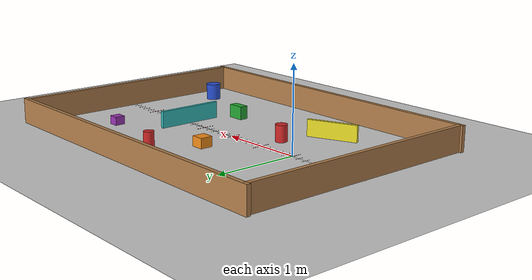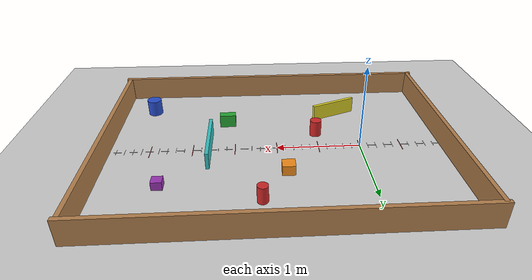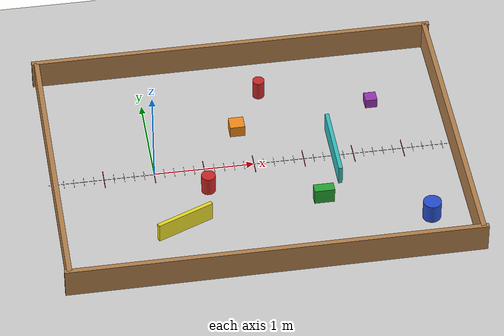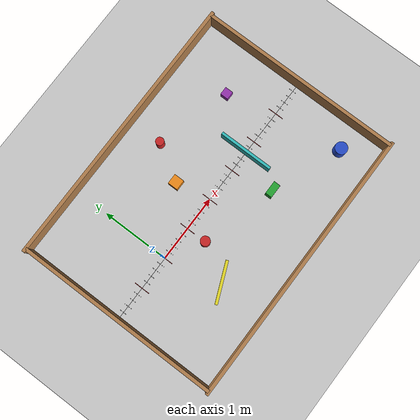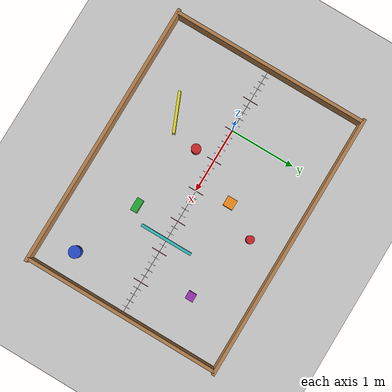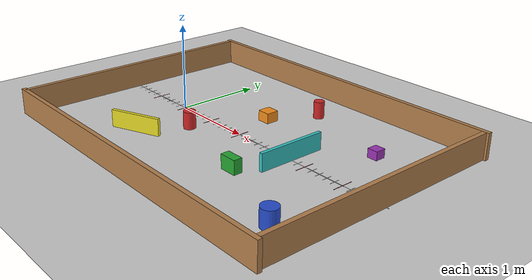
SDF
<?xml version="1.0"?>
<sdf version="1.6">
  <world name="recon_world">

    <!-- The robot is ~12 cm wide, so use a small, accurate time step. -->
    <physics type="ode">
      <max_step_size>0.001</max_step_size>
      <real_time_factor>1.0</real_time_factor>
      <real_time_update_rate>1000</real_time_update_rate>
      <ode>
        <solver>
          <type>quick</type>
          <iters>150</iters>
          <sor>1.3</sor>
        </solver>
        <constraints>
          <cfm>0.0</cfm>
          <erp>0.2</erp>
          <contact_max_correcting_vel>0.1</contact_max_correcting_vel>
          <contact_surface_layer>0.0005</contact_surface_layer>
        </constraints>
      </ode>
    </physics>

    <gravity>0 0 -9.81</gravity>

    <include><uri>model://sun</uri></include>

    <!-- flat ground with a grid so the robot's motion is easy to see -->
    <model name="ground">
      <static>true</static>
      <link name="link">
        <collision name="collision">
          <geometry><plane><normal>0 0 1</normal><size>40 40</size></plane></geometry>
          <surface>
            <friction><ode><mu>1.0</mu><mu2>1.0</mu2></ode></friction>
          </surface>
        </collision>
        <visual name="visual">
          <cast_shadows>false</cast_shadows>
          <geometry><plane><normal>0 0 1</normal><size>40 40</size></plane></geometry>
          <material><script>
            <uri>file://media/materials/scripts/gazebo.material</uri>
            <name>Gazebo/Grey</name>
          </script></material>
        </visual>
      </link>
    </model>

    <!-- 10 cm tape ruler along +x (red every 50 cm) so the walking distance is easy to see -->
    <model name="ruler">
      <static>true</static>
      <link name="link">
        <visual name="tick_-10"><pose>-1.00 0 0.0006 0 0 0</pose><geometry><box><size>0.006 0.24 0.001</size></box></geometry><material><script><uri>file://media/materials/scripts/gazebo.material</uri><name>Gazebo/Red</name></script></material></visual>
        <visual name="tick_-9"><pose>-0.90 0 0.0006 0 0 0</pose><geometry><box><size>0.003 0.12 0.001</size></box></geometry><material><script><uri>file://media/materials/scripts/gazebo.material</uri><name>Gazebo/White</name></script></material></visual>
        <visual name="tick_-8"><pose>-0.80 0 0.0006 0 0 0</pose><geometry><box><size>0.003 0.12 0.001</size></box></geometry><material><script><uri>file://media/materials/scripts/gazebo.material</uri><name>Gazebo/White</name></script></material></visual>
        <visual name="tick_-7"><pose>-0.70 0 0.0006 0 0 0</pose><geometry><box><size>0.003 0.12 0.001</size></box></geometry><material><script><uri>file://media/materials/scripts/gazebo.material</uri><name>Gazebo/White</name></script></material></visual>
        <visual name="tick_-6"><pose>-0.60 0 0.0006 0 0 0</pose><geometry><box><size>0.003 0.12 0.001</size></box></geometry><material><script><uri>file://media/materials/scripts/gazebo.material</uri><name>Gazebo/White</name></script></material></visual>
        <visual name="tick_-5"><pose>-0.50 0 0.0006 0 0 0</pose><geometry><box><size>0.006 0.24 0.001</size></box></geometry><material><script><uri>file://media/materials/scripts/gazebo.material</uri><name>Gazebo/Red</name></script></material></visual>
        <visual name="tick_-4"><pose>-0.40 0 0.0006 0 0 0</pose><geometry><box><size>0.003 0.12 0.001</size></box></geometry><material><script><uri>file://media/materials/scripts/gazebo.material</uri><name>Gazebo/White</name></script></material></visual>
        <visual name="tick_-3"><pose>-0.30 0 0.0006 0 0 0</pose><geometry><box><size>0.003 0.12 0.001</size></box></geometry><material><script><uri>file://media/materials/scripts/gazebo.material</uri><name>Gazebo/White</name></script></material></visual>
        <visual name="tick_-2"><pose>-0.20 0 0.0006 0 0 0</pose><geometry><box><size>0.003 0.12 0.001</size></box></geometry><material><script><uri>file://media/materials/scripts/gazebo.material</uri><name>Gazebo/White</name></script></material></visual>
        <visual name="tick_-1"><pose>-0.10 0 0.0006 0 0 0</pose><geometry><box><size>0.003 0.12 0.001</size></box></geometry><material><script><uri>file://media/materials/scripts/gazebo.material</uri><name>Gazebo/White</name></script></material></visual>
        <visual name="tick_0"><pose>0.00 0 0.0006 0 0 0</pose><geometry><box><size>0.006 0.24 0.001</size></box></geometry><material><script><uri>file://media/materials/scripts/gazebo.material</uri><name>Gazebo/Red</name></script></material></visual>
        <visual name="tick_1"><pose>0.10 0 0.0006 0 0 0</pose><geometry><box><size>0.003 0.12 0.001</size></box></geometry><material><script><uri>file://media/materials/scripts/gazebo.material</uri><name>Gazebo/White</name></script></material></visual>
        <visual name="tick_2"><pose>0.20 0 0.0006 0 0 0</pose><geometry><box><size>0.003 0.12 0.001</size></box></geometry><material><script><uri>file://media/materials/scripts/gazebo.material</uri><name>Gazebo/White</name></script></material></visual>
        <visual name="tick_3"><pose>0.30 0 0.0006 0 0 0</pose><geometry><box><size>0.003 0.12 0.001</size></box></geometry><material><script><uri>file://media/materials/scripts/gazebo.material</uri><name>Gazebo/White</name></script></material></visual>
        <visual name="tick_4"><pose>0.40 0 0.0006 0 0 0</pose><geometry><box><size>0.003 0.12 0.001</size></box></geometry><material><script><uri>file://media/materials/scripts/gazebo.material</uri><name>Gazebo/White</name></script></material></visual>
        <visual name="tick_5"><pose>0.50 0 0.0006 0 0 0</pose><geometry><box><size>0.006 0.24 0.001</size></box></geometry><material><script><uri>file://media/materials/scripts/gazebo.material</uri><name>Gazebo/Red</name></script></material></visual>
        <visual name="tick_6"><pose>0.60 0 0.0006 0 0 0</pose><geometry><box><size>0.003 0.12 0.001</size></box></geometry><material><script><uri>file://media/materials/scripts/gazebo.material</uri><name>Gazebo/White</name></script></material></visual>
        <visual name="tick_7"><pose>0.70 0 0.0006 0 0 0</pose><geometry><box><size>0.003 0.12 0.001</size></box></geometry><material><script><uri>file://media/materials/scripts/gazebo.material</uri><name>Gazebo/White</name></script></material></visual>
        <visual name="tick_8"><pose>0.80 0 0.0006 0 0 0</pose><geometry><box><size>0.003 0.12 0.001</size></box></geometry><material><script><uri>file://media/materials/scripts/gazebo.material</uri><name>Gazebo/White</name></script></material></visual>
        <visual name="tick_9"><pose>0.90 0 0.0006 0 0 0</pose><geometry><box><size>0.003 0.12 0.001</size></box></geometry><material><script><uri>file://media/materials/scripts/gazebo.material</uri><name>Gazebo/White</name></script></material></visual>
        <visual name="tick_10"><pose>1.00 0 0.0006 0 0 0</pose><geometry><box><size>0.006 0.24 0.001</size></box></geometry><material><script><uri>file://media/materials/scripts/gazebo.material</uri><name>Gazebo/Red</name></script></material></visual>
        <visual name="tick_11"><pose>1.10 0 0.0006 0 0 0</pose><geometry><box><size>0.003 0.12 0.001</size></box></geometry><material><script><uri>file://media/materials/scripts/gazebo.material</uri><name>Gazebo/White</name></script></material></visual>
        <visual name="tick_12"><pose>1.20 0 0.0006 0 0 0</pose><geometry><box><size>0.003 0.12 0.001</size></box></geometry><material><script><uri>file://media/materials/scripts/gazebo.material</uri><name>Gazebo/White</name></script></material></visual>
        <visual name="tick_13"><pose>1.30 0 0.0006 0 0 0</pose><geometry><box><size>0.003 0.12 0.001</size></box></geometry><material><script><uri>file://media/materials/scripts/gazebo.material</uri><name>Gazebo/White</name></script></material></visual>
        <visual name="tick_14"><pose>1.40 0 0.0006 0 0 0</pose><geometry><box><size>0.003 0.12 0.001</size></box></geometry><material><script><uri>file://media/materials/scripts/gazebo.material</uri><name>Gazebo/White</name></script></material></visual>
        <visual name="tick_15"><pose>1.50 0 0.0006 0 0 0</pose><geometry><box><size>0.006 0.24 0.001</size></box></geometry><material><script><uri>file://media/materials/scripts/gazebo.material</uri><name>Gazebo/Red</name></script></material></visual>
        <visual name="tick_16"><pose>1.60 0 0.0006 0 0 0</pose><geometry><box><size>0.003 0.12 0.001</size></box></geometry><material><script><uri>file://media/materials/scripts/gazebo.material</uri><name>Gazebo/White</name></script></material></visual>
        <visual name="tick_17"><pose>1.70 0 0.0006 0 0 0</pose><geometry><box><size>0.003 0.12 0.001</size></box></geometry><material><script><uri>file://media/materials/scripts/gazebo.material</uri><name>Gazebo/White</name></script></material></visual>
        <visual name="tick_18"><pose>1.80 0 0.0006 0 0 0</pose><geometry><box><size>0.003 0.12 0.001</size></box></geometry><material><script><uri>file://media/materials/scripts/gazebo.material</uri><name>Gazebo/White</name></script></material></visual>
        <visual name="tick_19"><pose>1.90 0 0.0006 0 0 0</pose><geometry><box><size>0.003 0.12 0.001</size></box></geometry><material><script><uri>file://media/materials/scripts/gazebo.material</uri><name>Gazebo/White</name></script></material></visual>
        <visual name="tick_20"><pose>2.00 0 0.0006 0 0 0</pose><geometry><box><size>0.006 0.24 0.001</size></box></geometry><material><script><uri>file://media/materials/scripts/gazebo.material</uri><name>Gazebo/Red</name></script></material></visual>
        <visual name="tick_21"><pose>2.10 0 0.0006 0 0 0</pose><geometry><box><size>0.003 0.12 0.001</size></box></geometry><material><script><uri>file://media/materials/scripts/gazebo.material</uri><name>Gazebo/White</name></script></material></visual>
        <visual name="tick_22"><pose>2.20 0 0.0006 0 0 0</pose><geometry><box><size>0.003 0.12 0.001</size></box></geometry><material><script><uri>file://media/materials/scripts/gazebo.material</uri><name>Gazebo/White</name></script></material></visual>
        <visual name="tick_23"><pose>2.30 0 0.0006 0 0 0</pose><geometry><box><size>0.003 0.12 0.001</size></box></geometry><material><script><uri>file://media/materials/scripts/gazebo.material</uri><name>Gazebo/White</name></script></material></visual>
        <visual name="tick_24"><pose>2.40 0 0.0006 0 0 0</pose><geometry><box><size>0.003 0.12 0.001</size></box></geometry><material><script><uri>file://media/materials/scripts/gazebo.material</uri><name>Gazebo/White</name></script></material></visual>
        <visual name="tick_25"><pose>2.50 0 0.0006 0 0 0</pose><geometry><box><size>0.006 0.24 0.001</size></box></geometry><material><script><uri>file://media/materials/scripts/gazebo.material</uri><name>Gazebo/Red</name></script></material></visual>
        <visual name="tick_26"><pose>2.60 0 0.0006 0 0 0</pose><geometry><box><size>0.003 0.12 0.001</size></box></geometry><material><script><uri>file://media/materials/scripts/gazebo.material</uri><name>Gazebo/White</name></script></material></visual>
        <visual name="tick_27"><pose>2.70 0 0.0006 0 0 0</pose><geometry><box><size>0.003 0.12 0.001</size></box></geometry><material><script><uri>file://media/materials/scripts/gazebo.material</uri><name>Gazebo/White</name></script></material></visual>
        <visual name="tick_28"><pose>2.80 0 0.0006 0 0 0</pose><geometry><box><size>0.003 0.12 0.001</size></box></geometry><material><script><uri>file://media/materials/scripts/gazebo.material</uri><name>Gazebo/White</name></script></material></visual>
        <visual name="tick_29"><pose>2.90 0 0.0006 0 0 0</pose><geometry><box><size>0.003 0.12 0.001</size></box></geometry><material><script><uri>file://media/materials/scripts/gazebo.material</uri><name>Gazebo/White</name></script></material></visual>
        <visual name="tick_30"><pose>3.00 0 0.0006 0 0 0</pose><geometry><box><size>0.006 0.24 0.001</size></box></geometry><material><script><uri>file://media/materials/scripts/gazebo.material</uri><name>Gazebo/Red</name></script></material></visual>
        <visual name="axis"><pose>1.0 0 0.0005 0 0 0</pose><geometry><box><size>4.1 0.004 0.001</size></box></geometry><material><script><uri>file://media/materials/scripts/gazebo.material</uri><name>Gazebo/White</name></script></material></visual>
      </link>
    </model>

    <!-- publishes /gazebo/model_states so the robot pose can be plotted/echoed -->
    <plugin name="gazebo_ros_state" filename="libgazebo_ros_state.so">
      <ros><namespace>/gazebo</namespace></ros>
      <update_rate>20.0</update_rate>
    </plugin>

    <!-- ===== arena: 4 m x 3 m room with obstacles ===== -->
    <model name="wall_n"><static>true</static><pose>1.0 1.5 0.15 0 0 0</pose><link name="l">
      <collision name="c"><geometry><box><size>4.1 0.05 0.3</size></box></geometry></collision>
      <visual name="v"><geometry><box><size>4.1 0.05 0.3</size></box></geometry><material><script><uri>file://media/materials/scripts/gazebo.material</uri><name>Gazebo/Wood</name></script></material></visual></link></model>
    <model name="wall_s"><static>true</static><pose>1.0 -1.5 0.15 0 0 0</pose><link name="l">
      <collision name="c"><geometry><box><size>4.1 0.05 0.3</size></box></geometry></collision>
      <visual name="v"><geometry><box><size>4.1 0.05 0.3</size></box></geometry><material><script><uri>file://media/materials/scripts/gazebo.material</uri><name>Gazebo/Wood</name></script></material></visual></link></model>
    <model name="wall_e"><static>true</static><pose>3.0 0.0 0.15 0 0 0</pose><link name="l">
      <collision name="c"><geometry><box><size>0.05 3.0 0.3</size></box></geometry></collision>
      <visual name="v"><geometry><box><size>0.05 3.0 0.3</size></box></geometry><material><script><uri>file://media/materials/scripts/gazebo.material</uri><name>Gazebo/Wood</name></script></material></visual></link></model>
    <model name="wall_w"><static>true</static><pose>-1.0 0.0 0.15 0 0 0</pose><link name="l">
      <collision name="c"><geometry><box><size>0.05 3.0 0.3</size></box></geometry></collision>
      <visual name="v"><geometry><box><size>0.05 3.0 0.3</size></box></geometry><material><script><uri>file://media/materials/scripts/gazebo.material</uri><name>Gazebo/Wood</name></script></material></visual></link></model>
    <model name="block1"><static>true</static><pose>0.9 0.5 0.06 0 0 0</pose><link name="l">
      <collision name="c"><geometry><box><size>0.15 0.15 0.12</size></box></geometry></collision>
      <visual name="v"><geometry><box><size>0.15 0.15 0.12</size></box></geometry><material><script><uri>file://media/materials/scripts/gazebo.material</uri><name>Gazebo/Orange</name></script></material></visual></link></model>
    <model name="block2"><static>true</static><pose>1.6 -0.6 0.08 0 0 0</pose><link name="l">
      <collision name="c"><geometry><box><size>0.2 0.1 0.16</size></box></geometry></collision>
      <visual name="v"><geometry><box><size>0.2 0.1 0.16</size></box></geometry><material><script><uri>file://media/materials/scripts/gazebo.material</uri><name>Gazebo/Green</name></script></material></visual></link></model>
    <model name="block3"><static>true</static><pose>2.3 0.7 0.05 0 0 0</pose><link name="l">
      <collision name="c"><geometry><box><size>0.12 0.12 0.10</size></box></geometry></collision>
      <visual name="v"><geometry><box><size>0.12 0.12 0.10</size></box></geometry><material><script><uri>file://media/materials/scripts/gazebo.material</uri><name>Gazebo/Purple</name></script></material></visual></link></model>
    <model name="wall_mid"><static>true</static><pose>1.8 0.0 0.1 0 0 0</pose><link name="l">
      <collision name="c"><geometry><box><size>0.04 0.8 0.2</size></box></geometry></collision>
      <visual name="v"><geometry><box><size>0.04 0.8 0.2</size></box></geometry><material><script><uri>file://media/materials/scripts/gazebo.material</uri><name>Gazebo/Turquoise</name></script></material></visual></link></model>
    <model name="bar"><static>true</static><pose>0.2 -0.8 0.1 0 0 0.4</pose><link name="l">
      <collision name="c"><geometry><box><size>0.6 0.04 0.2</size></box></geometry></collision>
      <visual name="v"><geometry><box><size>0.6 0.04 0.2</size></box></geometry><material><script><uri>file://media/materials/scripts/gazebo.material</uri><name>Gazebo/Yellow</name></script></material></visual></link></model>
    <model name="pillar1"><static>true</static><pose>0.5 -0.3 0.1 0 0 0</pose><link name="l">
      <collision name="c"><geometry><cylinder><radius>0.07</radius><length>0.2</length></cylinder></geometry></collision>
      <visual name="v"><geometry><cylinder><radius>0.07</radius><length>0.2</length></cylinder></geometry><material><script><uri>file://media/materials/scripts/gazebo.material</uri><name>Gazebo/Red</name></script></material></visual></link></model>
    <model name="pillar2"><static>true</static><pose>2.6 -1.0 0.1 0 0 0</pose><link name="l">
      <collision name="c"><geometry><cylinder><radius>0.09</radius><length>0.2</length></cylinder></geometry></collision>
      <visual name="v"><geometry><cylinder><radius>0.09</radius><length>0.2</length></cylinder></geometry><material><script><uri>file://media/materials/scripts/gazebo.material</uri><name>Gazebo/Blue</name></script></material></visual></link></model>
    <model name="pillar3"><static>true</static><pose>1.2 1.0 0.1 0 0 0</pose><link name="l">
      <collision name="c"><geometry><cylinder><radius>0.06</radius><length>0.2</length></cylinder></geometry></collision>
      <visual name="v"><geometry><cylinder><radius>0.06</radius><length>0.2</length></cylinder></geometry><material><script><uri>file://media/materials/scripts/gazebo.material</uri><name>Gazebo/Red</name></script></material></visual></link></model>

    <gui>
      <camera name="user_camera">
        <!-- fixed overview of the whole arena (no camera shake). To follow the robot instead:
             right-click "recon" in the model list -> Follow. -->
        <pose>1.0 -2.4 2.0 0 0.75 1.5708</pose>
      </camera>
    </gui>

  </world>
</sdf>
